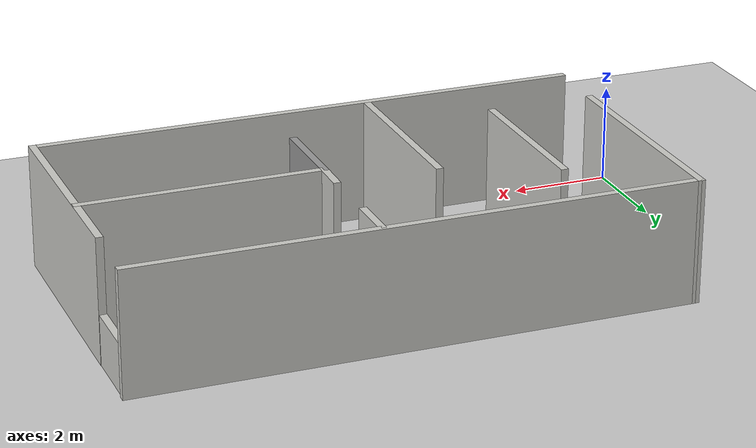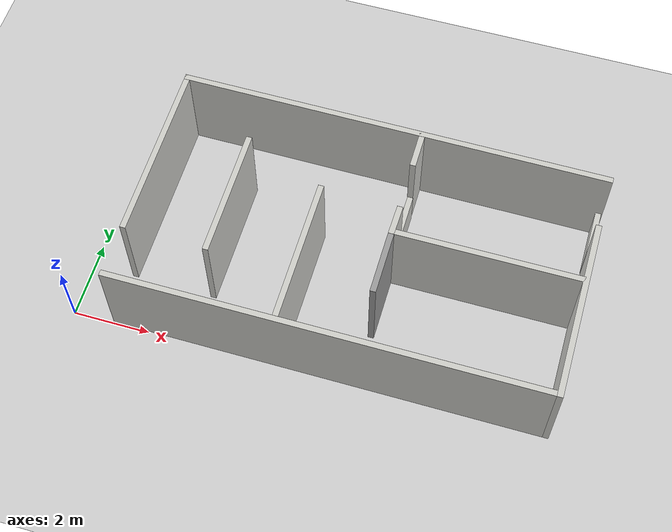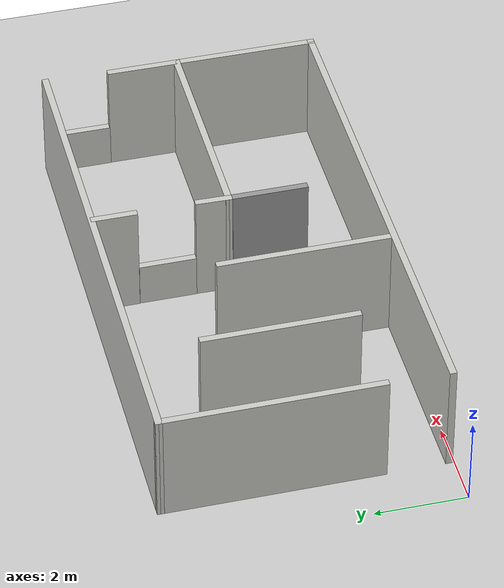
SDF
<sdf version="1.7">
 <world name="default">
  <light name="sun" type="directional">
   <pose>0 0 10 0 -0 0</pose>
   <diffuse>0.8 0.8 0.8 1</diffuse>
   <specular>0.2 0.2 0.2 1</specular>
   <attenuation>
    <range>1000</range>
    <constant>0.9</constant>
    <linear>0.01</linear>
    <quadratic>0.001</quadratic>
   </attenuation>
   <direction>-0.5 0.1 -0.9</direction>
   <spot><inner_angle>0</inner_angle><outer_angle>0</outer_angle><falloff>0</falloff></spot>
  </light>
  <model name="ground_plane">
   <static>1</static>
   <link name="link">
    <collision name="collision">
     <geometry><plane><normal>0 0 1</normal><size>100 100</size></plane></geometry>
     <surface>
      <contact><collide_bitmask>65535</collide_bitmask></contact>
      <friction><ode><mu>100</mu><mu2>50</mu2></ode></friction>
     </surface>
    </collision>
    <visual name="visual">
     <cast_shadows>0</cast_shadows>
     <geometry><plane><normal>0 0 1</normal><size>100 100</size></plane></geometry>
     <material>
      <script><uri>file://media/materials/scripts/gazebo.material</uri><name>Gazebo/Grey</name></script>
     </material>
    </visual>
   </link>
  </model>
  <gravity>0 0 -9.8</gravity>
  <magnetic_field>6e-06 2.3e-05 -4.2e-05</magnetic_field>
  <atmosphere type="adiabatic"/>
  <physics type="ode">
   <max_step_size>0.001</max_step_size>
   <real_time_factor>1</real_time_factor>
   <real_time_update_rate>1000</real_time_update_rate>
  </physics>
  <scene><ambient>0.4 0.4 0.4 1</ambient><background>0.7 0.7 0.7 1</background><shadows>1</shadows></scene>
  <spherical_coordinates>
   <surface_model>EARTH_WGS84</surface_model>
   <latitude_deg>0</latitude_deg>
   <longitude_deg>0</longitude_deg>
   <elevation>0</elevation>
   <heading_deg>0</heading_deg>
  </spherical_coordinates>
  <model name="House_app_a">
   <pose>6.67682 3.13219 0 0 -0 0</pose>
   <link name="Wall_39">
    <collision name="Wall_39_Collision">
     <geometry><box><size>11.25 0.15 2.5</size></box></geometry>
     <pose>0 0 1.25 0 -0 0</pose>
    </collision>
    <visual name="Wall_39_Visual">
     <pose>0 0 1.25 0 -0 0</pose>
     <geometry><box><size>11.25 0.15 2.5</size></box></geometry>
     <material>
      <script><uri>file://media/materials/scripts/gazebo.material</uri><name>Gazebo/CeilingTiled</name></script>
      <ambient>1 1 1 1</ambient>
     </material>
     <meta><layer>0</layer></meta>
    </visual>
    <pose>-0.009 -3.02059 0 0 -0 0</pose>
   </link>
   <link name="Wall_41">
    <collision name="Wall_41_Collision">
     <geometry><box><size>4.7 0.15 2.5</size></box></geometry>
     <pose>0 0 1.25 0 -0 0</pose>
    </collision>
    <visual name="Wall_41_Visual">
     <pose>0 0 1.25 0 -0 0</pose>
     <geometry><box><size>4.7 0.15 2.5</size></box></geometry>
     <material>
      <script><uri>file://media/materials/scripts/gazebo.material</uri><name>Gazebo/CeilingTiled</name></script>
      <ambient>1 1 1 1</ambient>
     </material>
     <meta><layer>0</layer></meta>
    </visual>
    <pose>5.541 -0.74559 0 0 -0 1.5708</pose>
   </link>
   <link name="Wall_43">
    <collision name="Wall_43_Collision">
     <geometry><box><size>1.35 0.15 1</size></box></geometry>
     <pose>0 0 0.5 0 -0 0</pose>
    </collision>
    <visual name="Wall_43_Visual">
     <pose>0 0 0.5 0 -0 0</pose>
     <geometry><box><size>1.35 0.15 1</size></box></geometry>
     <material>
      <script><uri>file://media/materials/scripts/gazebo.material</uri><name>Gazebo/CeilingTiled</name></script>
      <ambient>1 1 1 1</ambient>
     </material>
     <meta><layer>0</layer></meta>
    </visual>
    <pose>5.53321 2.27005 0 0 -0 1.5708</pose>
   </link>
   <link name="Wall_47">
    <collision name="Wall_47_Collision">
     <geometry><box><size>11.2731 0.15 2.5</size></box></geometry>
     <pose>0 0 1.25 0 -0 0</pose>
    </collision>
    <visual name="Wall_47_Visual">
     <pose>0 0 1.25 0 -0 0</pose>
     <geometry><box><size>11.2731 0.15 2.5</size></box></geometry>
     <material>
      <script><uri>file://media/materials/scripts/gazebo.material</uri><name>Gazebo/CeilingTiled</name></script>
      <ambient>1 1 1 1</ambient>
     </material>
     <meta><layer>0</layer></meta>
    </visual>
    <pose>-0 3.00137 0 0 -0 3.13818</pose>
   </link>
   <link name="Wall_50">
    <collision name="Wall_50_Collision">
     <geometry><box><size>1.25 0.15 1</size></box></geometry>
     <pose>0 0 0.5 0 -0 0</pose>
    </collision>
    <visual name="Wall_50_Visual">
     <pose>0 0 0.5 0 -0 0</pose>
     <geometry><box><size>1.25 0.15 1</size></box></geometry>
     <material>
      <script><uri>file://media/materials/scripts/gazebo.material</uri><name>Gazebo/CeilingTiled</name></script>
      <ambient>1 1 1 1</ambient>
     </material>
     <meta><layer>0</layer></meta>
    </visual>
    <pose>0.758435 1.3863 0 0 -0 1.5708</pose>
   </link>
   <link name="Wall_53">
    <collision name="Wall_53_Collision">
     <geometry><box><size>4.8 0.15 2.5</size></box></geometry>
     <pose>0 0 1.25 0 -0 0</pose>
    </collision>
    <visual name="Wall_53_Visual">
     <pose>0 0 1.25 0 -0 0</pose>
     <geometry><box><size>4.8 0.15 2.5</size></box></geometry>
     <material>
      <script><uri>file://media/materials/scripts/gazebo.material</uri><name>Gazebo/CeilingTiled</name></script>
      <ambient>1 1 1 1</ambient>
     </material>
     <meta><layer>0</layer></meta>
    </visual>
    <pose>-5.5615 0.695335 0 0 -0 1.5708</pose>
   </link>
   <link name="Wall_58">
    <collision name="Wall_58_Collision">
     <geometry><box><size>3.4 0.15 2.5</size></box></geometry>
     <pose>0 0 1.25 0 -0 0</pose>
    </collision>
    <visual name="Wall_58_Visual">
     <pose>0 0 1.25 0 -0 0</pose>
     <geometry><box><size>3.4 0.15 2.5</size></box></geometry>
     <material>
      <script><uri>file://media/materials/scripts/gazebo.material</uri><name>Gazebo/CeilingTiled</name></script>
      <ambient>1 1 1 1</ambient>
     </material>
     <meta><layer>0</layer></meta>
    </visual>
    <pose>-3.43323 -0.020065 0 0 -0 1.5708</pose>
   </link>
   <link name="Wall_60">
    <collision name="Wall_60_Collision">
     <geometry><box><size>3.75 0.15 2.5</size></box></geometry>
     <pose>0 0 1.25 0 -0 0</pose>
    </collision>
    <visual name="Wall_60_Visual">
     <pose>0 0 1.25 0 -0 0</pose>
     <geometry><box><size>3.75 0.15 2.5</size></box></geometry>
     <material>
      <script><uri>file://media/materials/scripts/gazebo.material</uri><name>Gazebo/CeilingTiled</name></script>
      <ambient>1 1 1 1</ambient>
     </material>
     <meta><layer>0</layer></meta>
    </visual>
    <pose>-1.2695 -1.07109 0 0 -0 1.5708</pose>
   </link>
   <link name="Wall_64">
    <collision name="Wall_64_Collision">
     <geometry><box><size>4.92645 0.15 2.5</size></box></geometry>
     <pose>0 0 1.25 0 -0 0</pose>
    </collision>
    <visual name="Wall_64_Visual">
     <pose>0 0 1.25 0 -0 0</pose>
     <geometry><box><size>4.92645 0.15 2.5</size></box></geometry>
     <material>
      <script><uri>file://media/materials/scripts/gazebo.material</uri><name>Gazebo/CeilingTiled</name></script>
      <ambient>1 1 1 1</ambient>
     </material>
     <meta><layer>0</layer></meta>
    </visual>
    <pose>3.13843 0.038827 0 0 -0 3.14159</pose>
   </link>
   <link name="Wall_66">
    <collision name="Wall_66_Collision">
     <geometry><box><size>1.8 0.15 2.5</size></box></geometry>
     <pose>0 0 1.25 0 -0 0</pose>
    </collision>
    <visual name="Wall_66_Visual">
     <pose>0 0 1.25 0 -0 0</pose>
     <geometry><box><size>1.8 0.15 2.5</size></box></geometry>
     <material>
      <script><uri>file://media/materials/scripts/gazebo.material</uri><name>Gazebo/Grey</name></script>
      <ambient>1 1 1 1</ambient>
     </material>
     <meta><layer>0</layer></meta>
    </visual>
    <pose>0.75021 -0.786173 0 0 -0 -1.5708</pose>
   </link>
   <link name="Wall_70">
    <collision name="Wall_70_Collision">
     <geometry><box><size>1 0.15 2.5</size></box></geometry>
     <pose>0 0 1.25 0 -0 0</pose>
    </collision>
    <visual name="Wall_70_Visual">
     <pose>0 0 1.25 0 -0 0</pose>
     <geometry><box><size>1 0.15 2.5</size></box></geometry>
     <material>
      <script><uri>file://media/materials/scripts/gazebo.material</uri><name>Gazebo/CeilingTiled</name></script>
      <ambient>1 1 1 1</ambient>
     </material>
     <meta><layer>0</layer></meta>
    </visual>
    <pose>0.749401 2.51605 0 0 -0 -1.5708</pose>
   </link>
   <link name="Wall_72">
    <collision name="Wall_72_Collision">
     <geometry><box><size>0.8 0.15 2.5</size></box></geometry>
     <pose>0 0 1.25 0 -0 0</pose>
    </collision>
    <visual name="Wall_72_Visual">
     <pose>0 0 1.25 0 -0 0</pose>
     <geometry><box><size>0.8 0.15 2.5</size></box></geometry>
     <material>
      <script><uri>file://media/materials/scripts/gazebo.material</uri><name>Gazebo/CeilingTiled</name></script>
      <ambient>1 1 1 1</ambient>
     </material>
     <meta><layer>0</layer></meta>
    </visual>
    <pose>0.756823 0.363827 0 0 -0 1.55045</pose>
   </link>
   <static>1</static>
  </model>
 </world>
</sdf>
